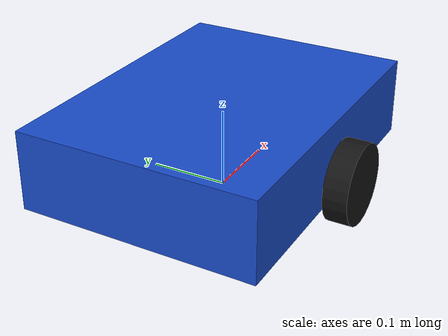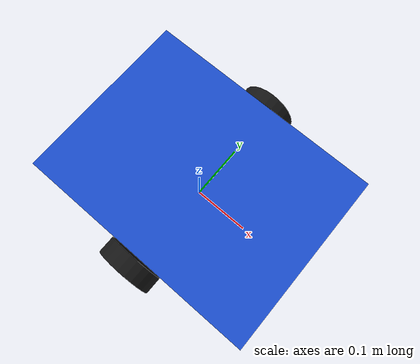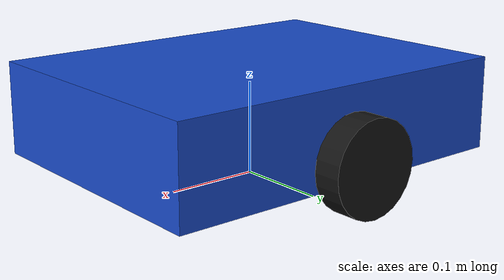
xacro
<?xml version="1.0"?>
<robot xmlns:xacro="http://www.ros.org/wiki/xacro" name="color_robot">

  <!-- Robot dimensions -->
  <xacro:property name="PI" value="3.14159265"/>
  <xacro:property name="body_l" value="0.40"/>
  <xacro:property name="body_w" value="0.30"/>
  <xacro:property name="body_h" value="0.10"/>
  <xacro:property name="wheel_r" value="0.05"/>
  <xacro:property name="wheel_w" value="0.03"/>
  <xacro:property name="wheel_sep" value="0.34"/>

  <!-- Base footprint -->
  <link name="base_footprint"/>

  <!-- Main chassis -->
  <link name="base_link">
    <inertial>
      <origin xyz="0 0 0"/>
      <mass value="5.0"/>
      <inertia ixx="0.0133" ixy="0" ixz="0"
               iyy="0.0283" iyz="0"
               izz="0.0417"/>
    </inertial>

    <visual>
      <origin xyz="0 0 0"/>
      <geometry>
        <box size="${body_l} ${body_w} ${body_h}"/>
      </geometry>
      <material name="robot_blue">
        <color rgba="0.1 0.3 0.8 1"/>
      </material>
    </visual>

    <collision>
      <origin xyz="0 0 0"/>
      <geometry>
        <box size="${body_l} ${body_w} ${body_h}"/>
      </geometry>
    </collision>
  </link>

  <joint name="base_joint" type="fixed">
    <parent link="base_footprint"/>
    <child link="base_link"/>
    <origin xyz="0 0 0.075" rpy="0 0 0"/>
  </joint>

  <!-- Wheel macro -->
  <xacro:macro name="wheel" params="prefix y">
    <link name="${prefix}_wheel_link">
      <inertial>
        <mass value="0.5"/>
        <origin xyz="0 0 0"/>
        <inertia ixx="0.0003" ixy="0" ixz="0"
                 iyy="0.0003" iyz="0"
                 izz="0.0003"/>
      </inertial>

      <visual>
        <origin xyz="0 0 0" rpy="${PI/2} 0 0"/>
        <geometry>
          <cylinder radius="${wheel_r}" length="${wheel_w}"/>
        </geometry>
        <material name="black">
          <color rgba="0.08 0.08 0.08 1"/>
        </material>
      </visual>

      <collision>
        <origin xyz="0 0 0" rpy="${PI/2} 0 0"/>
        <geometry>
          <cylinder radius="${wheel_r}" length="${wheel_w}"/>
        </geometry>
      </collision>
    </link>

    <joint name="${prefix}_wheel_joint" type="continuous">
      <parent link="base_link"/>
      <child link="${prefix}_wheel_link"/>
      <origin xyz="0 ${y} -0.025" rpy="0 0 0"/>
      <axis xyz="0 1 0"/>
    </joint>
  </xacro:macro>

  <xacro:wheel prefix="left" y="${wheel_sep/2}"/>
  <xacro:wheel prefix="right" y="${-wheel_sep/2}"/>

  <!-- Caster support macro -->
<xacro:macro name="caster" params="name x">
  <link name="${name}_caster_link">
    <inertial>
      <mass value="0.1"/>
      <inertia ixx="0.00001" ixy="0" ixz="0"
               iyy="0.00001" iyz="0"
               izz="0.00001"/>
    </inertial>

    <visual>
      <geometry>
        <sphere radius="0.025"/>
      </geometry>
      <material name="caster_color">
        <color rgba="0.5 0.5 0.5 1"/>
      </material>
    </visual>

    <collision>
      <geometry>
        <sphere radius="0.025"/>
      </geometry>
    </collision>
  </link>

  <joint name="${name}_caster_joint" type="fixed">
    <parent link="base_link"/>
    <child link="${name}_caster_link"/>
    <origin xyz="${x} 0 -0.05"/>
  </joint>

  <gazebo reference="${name}_caster_link">
    <mu1>0.0</mu1>
    <mu2>0.0</mu2>
  </gazebo>
</xacro:macro>

<!-- Front and rear caster supports -->
<xacro:caster name="front" x="0.15"/>
<xacro:caster name="rear" x="-0.15"/>
  <!-- Camera -->
  <link name="camera_link"/>
  <joint name="camera_joint" type="fixed">
    <parent link="base_link"/>
    <child link="camera_link"/>
    <origin xyz="0.18 0 0.105" rpy="0 0 0"/>
  </joint>

  <link name="camera_optical_link"/>
  <joint name="camera_optical_joint" type="fixed">
    <parent link="camera_link"/>
    <child link="camera_optical_link"/>
    <origin xyz="0 0 0" rpy="${-PI/2} 0 ${-PI/2}"/>
  </joint>

  <!-- LiDAR -->
  <link name="lidar_link"/>
  <joint name="lidar_joint" type="fixed">
    <parent link="base_link"/>
    <child link="lidar_link"/>
    <origin xyz="0 0 0.075"/>
  </joint>

  <!-- Gazebo camera sensor -->
  <gazebo reference="camera_link">
    <sensor name="robot_camera" type="camera">
      <always_on>true</always_on>
      <update_rate>15</update_rate>
      <visualize>true</visualize>
      <camera>
        <horizontal_fov>1.047</horizontal_fov>
        <image>
          <width>640</width>
          <height>480</height>
          <format>R8G8B8</format>
        </image>
        <clip>
          <near>0.05</near>
          <far>10.0</far>
        </clip>
      </camera>
      <plugin name="camera_controller"
              filename="libgazebo_ros_camera.so">
        <ros>
          <namespace>/</namespace>
          <remapping>image_raw:=camera/image_raw</remapping>
          <remapping>camera_info:=camera/camera_info</remapping>
        </ros>
        <camera_name>camera</camera_name>
        <frame_name>camera_optical_link</frame_name>
      </plugin>
    </sensor>
  </gazebo>

  <!-- Gazebo LiDAR sensor -->
  <gazebo reference="lidar_link">
    <sensor name="robot_lidar" type="ray">
      <always_on>true</always_on>
      <update_rate>10</update_rate>
      <visualize>true</visualize>
      <ray>
        <scan>
          <horizontal>
            <samples>360</samples>
            <resolution>1</resolution>
            <min_angle>-${PI}</min_angle>
            <max_angle>${PI}</max_angle>
          </horizontal>
        </scan>
        <range>
          <min>0.12</min>
          <max>10.0</max>
          <resolution>0.01</resolution>
        </range>
      </ray>
      <plugin name="lidar_controller"
              filename="libgazebo_ros_ray_sensor.so">
        <ros>
          <namespace>/</namespace>
          <remapping>~/out:=scan</remapping>
        </ros>
        <output_type>sensor_msgs/LaserScan</output_type>
        <frame_name>lidar_link</frame_name>
      </plugin>
    </sensor>
  </gazebo>

  <!-- Differential drive plugin -->
  <gazebo>
    <plugin name="diff_drive" filename="libgazebo_ros_diff_drive.so">
      <ros>
        <namespace>/</namespace>
      </ros>
      <update_rate>50</update_rate>
      <left_joint>left_wheel_joint</left_joint>
      <right_joint>right_wheel_joint</right_joint>
      <wheel_separation>${wheel_sep}</wheel_separation>
      <wheel_diameter>${2*wheel_r}</wheel_diameter>
      <max_wheel_torque>20</max_wheel_torque>
      <max_wheel_acceleration>2.0</max_wheel_acceleration>
      <command_topic>cmd_vel</command_topic>
      <odometry_topic>odom</odometry_topic>
      <odometry_frame>odom</odometry_frame>
      <robot_base_frame>base_footprint</robot_base_frame>
      <publish_odom>true</publish_odom>
      <publish_odom_tf>true</publish_odom_tf>
      <publish_wheel_tf>true</publish_wheel_tf>
    </plugin>
  </gazebo>

  <!-- Wheel friction -->
  <gazebo reference="left_wheel_link">
    <mu1>1.0</mu1>
    <mu2>1.0</mu2>
  </gazebo>
  <gazebo reference="right_wheel_link">
    <mu1>1.0</mu1>
    <mu2>1.0</mu2>
  </gazebo>

</robot>
